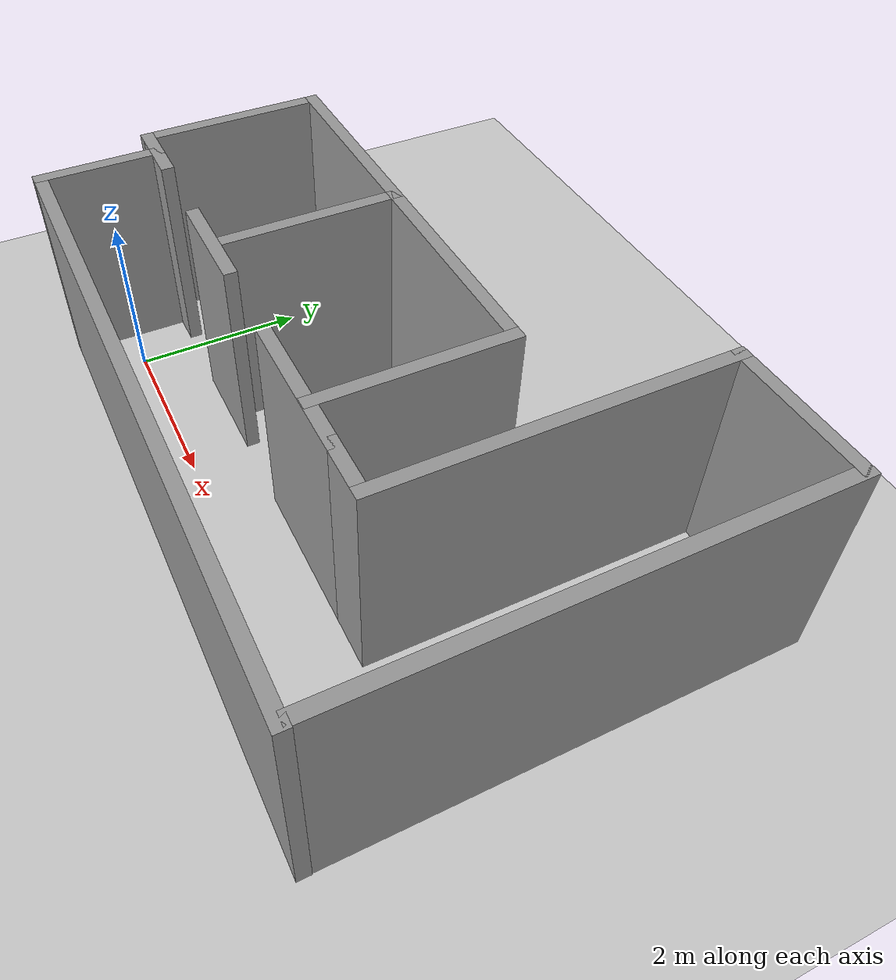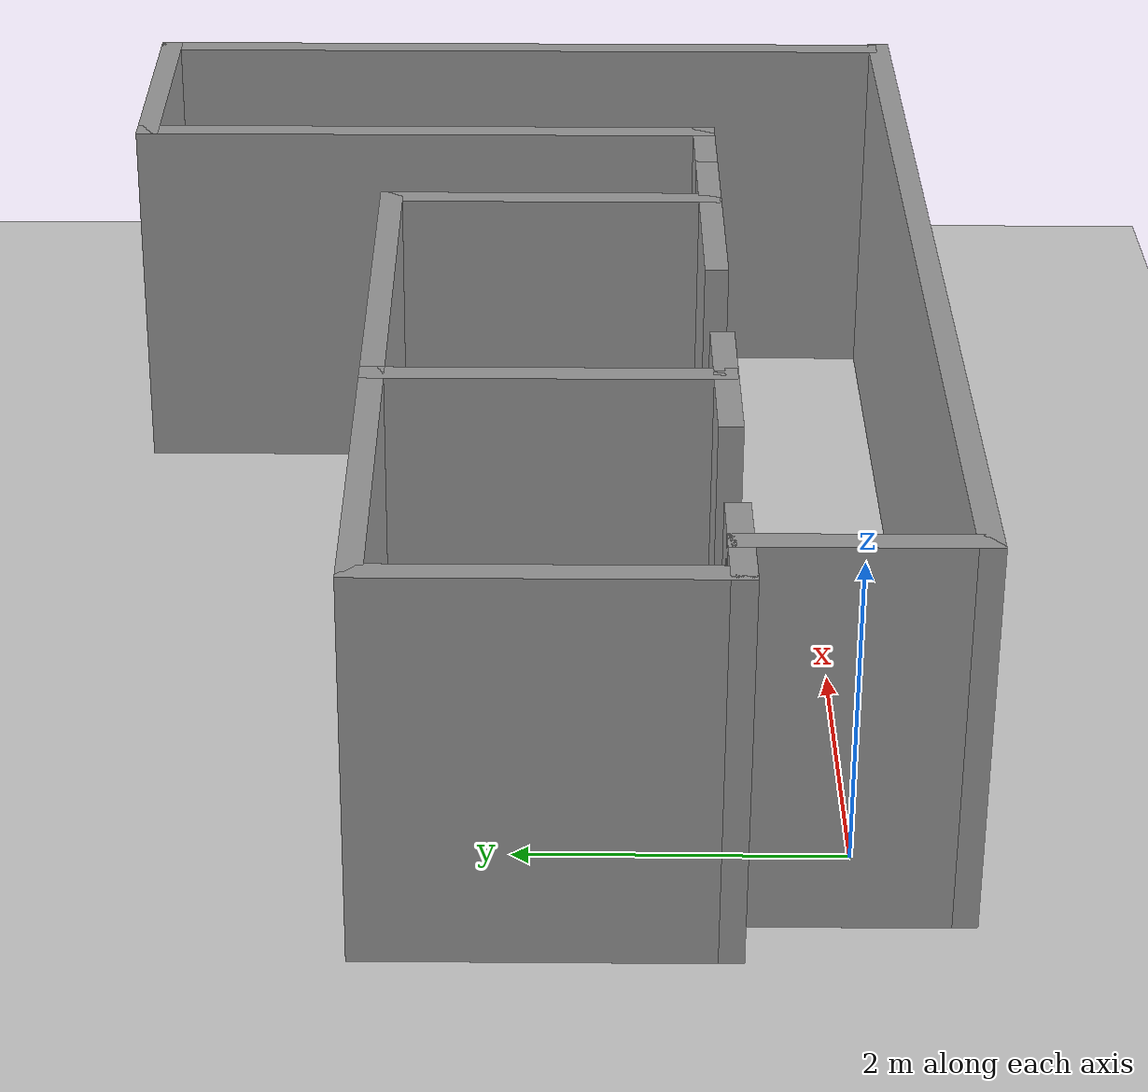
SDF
<sdf version="1.6">
 <world name="default">
  <light name="sun" type="directional">
   <pose>0 0 10 0 -0 0</pose>
   <diffuse>0.8 0.8 0.8 1</diffuse>
   <specular>0.2 0.2 0.2 1</specular>
   <attenuation>
    <range>1000</range>
    <constant>0.9</constant>
    <linear>0.01</linear>
    <quadratic>0.001</quadratic>
   </attenuation>
   <direction>-0.5 0.1 -0.9</direction>
  </light>
  <model name="ground_plane">
   <static>1</static>
   <link name="link">
    <collision name="collision">
     <geometry><plane><normal>0 0 1</normal><size>100 100</size></plane></geometry>
     <surface><friction><ode><mu>100</mu><mu2>50</mu2></ode></friction></surface>
    </collision>
    <visual name="visual">
     <cast_shadows>0</cast_shadows>
     <geometry><plane><normal>0 0 1</normal><size>100 100</size></plane></geometry>
     <material>
      <script><uri>file://media/materials/scripts/gazebo.material</uri><name>Gazebo/Grey</name></script>
     </material>
    </visual>
   </link>
  </model>
  <gravity>0 0 -9.8</gravity>
  <magnetic_field>6e-06 2.3e-05 -4.2e-05</magnetic_field>
  <atmosphere type="adiabatic"/>
  <physics name="default_physics" default="0" type="ode">
   <max_step_size>0.001</max_step_size>
   <real_time_factor>1</real_time_factor>
   <real_time_update_rate>1000</real_time_update_rate>
  </physics>
  <scene><ambient>0.4 0.4 0.4 1</ambient><background>0.7 0.7 0.7 1</background><shadows>1</shadows></scene>
  <audio><device>default</device></audio>
  <spherical_coordinates>
   <surface_model>EARTH_WGS84</surface_model>
   <latitude_deg>0</latitude_deg>
   <longitude_deg>0</longitude_deg>
   <elevation>0</elevation>
   <heading_deg>0</heading_deg>
  </spherical_coordinates>
  <model name="perch_office">
   <pose>2.87522 1.99397 0 0 -0 0</pose>
   <link name="Wall_100">
    <collision name="Wall_100_Collision">
     <geometry><box><size>4 0.15 2.5</size></box></geometry>
     <pose>0 0 1.25 0 -0 0</pose>
    </collision>
    <visual name="Wall_100_Visual">
     <pose>0 0 1.25 0 -0 0</pose>
     <geometry><box><size>4 0.15 2.5</size></box></geometry>
     <material>
      <script><uri>file://media/materials/scripts/gazebo.material</uri><name>Gazebo/Grey</name></script>
      <ambient>1 1 1 1</ambient>
     </material>
     <meta><layer>0</layer></meta>
    </visual>
    <pose>2.24045 0.670994 0 0 -0 1.5708</pose>
   </link>
   <link name="Wall_102">
    <collision name="Wall_102_Collision">
     <geometry><box><size>1.75 0.15 2.5</size></box></geometry>
     <pose>0 0 1.25 0 -0 0</pose>
    </collision>
    <visual name="Wall_102_Visual">
     <pose>0 0 1.25 0 -0 0</pose>
     <geometry><box><size>1.75 0.15 2.5</size></box></geometry>
     <material>
      <script><uri>file://media/materials/scripts/gazebo.material</uri><name>Gazebo/Grey</name></script>
      <ambient>1 1 1 1</ambient>
     </material>
     <meta><layer>0</layer></meta>
    </visual>
    <pose>3.04045 2.59599 0 0 -0 0</pose>
   </link>
   <link name="Wall_103">
    <collision name="Wall_103_Collision">
     <geometry><box><size>5.25 0.15 2.5</size></box></geometry>
     <pose>0 0 1.25 0 -0 0</pose>
    </collision>
    <visual name="Wall_103_Visual">
     <pose>0 0 1.25 0 -0 0</pose>
     <geometry><box><size>5.25 0.15 2.5</size></box></geometry>
     <material>
      <script><uri>file://media/materials/scripts/gazebo.material</uri><name>Gazebo/Grey</name></script>
      <ambient>1 1 1 1</ambient>
     </material>
     <meta><layer>0</layer></meta>
    </visual>
    <pose>3.84045 0.045994 0 0 -0 -1.5708</pose>
   </link>
   <link name="Wall_76">
    <collision name="Wall_76_Collision">
     <geometry><box><size>7.5 0.15 2.5</size></box></geometry>
     <pose>0 0 1.25 0 -0 0</pose>
    </collision>
    <visual name="Wall_76_Visual">
     <pose>0 0 1.25 0 -0 0</pose>
     <geometry><box><size>7.5 0.15 2.5</size></box></geometry>
     <material>
      <script><uri>file://media/materials/scripts/gazebo.material</uri><name>Gazebo/Grey</name></script>
      <ambient>1 1 1 1</ambient>
     </material>
     <meta><layer>0</layer></meta>
    </visual>
    <pose>0.175 -2.59599 0 0 -0 3.14159</pose>
   </link>
   <link name="Wall_80">
    <collision name="Wall_80_Collision">
     <geometry><box><size>1.5 0.15 2.5</size></box></geometry>
     <pose>0 0 1.25 0 -0 0</pose>
    </collision>
    <visual name="Wall_80_Visual">
     <pose>0 0 1.25 0 -0 0</pose>
     <geometry><box><size>1.5 0.15 2.5</size></box></geometry>
     <material>
      <script><uri>file://media/materials/scripts/gazebo.material</uri><name>Gazebo/Grey</name></script>
      <ambient>1 1 1 1</ambient>
     </material>
     <meta><layer>0</layer></meta>
    </visual>
    <pose>-3.5 -1.92099 0 0 -0 1.5708</pose>
   </link>
   <link name="Wall_82">
    <collision name="Wall_82_Collision">
     <geometry><box><size>0.5 0.15 2.5</size></box></geometry>
     <pose>0 0 1.25 0 -0 0</pose>
    </collision>
    <visual name="Wall_82_Visual">
     <pose>0 0 1.25 0 -0 0</pose>
     <geometry><box><size>0.5 0.15 2.5</size></box></geometry>
     <material>
      <script><uri>file://media/materials/scripts/gazebo.material</uri><name>Gazebo/Grey</name></script>
      <ambient>1 1 1 1</ambient>
     </material>
     <meta><layer>0</layer></meta>
    </visual>
    <pose>-3.325 -1.24599 0 0 -0 0</pose>
   </link>
   <link name="Wall_84">
    <collision name="Wall_84_Collision">
     <geometry><box><size>1.25 0.15 2.5</size></box></geometry>
     <pose>0 0 1.25 0 -0 0</pose>
    </collision>
    <visual name="Wall_84_Visual">
     <pose>0 0 1.25 0 -0 0</pose>
     <geometry><box><size>1.25 0.15 2.5</size></box></geometry>
     <material>
      <script><uri>file://media/materials/scripts/gazebo.material</uri><name>Gazebo/Grey</name></script>
      <ambient>1 1 1 1</ambient>
     </material>
     <meta><layer>0</layer></meta>
    </visual>
    <pose>-1.55441 -1.25049 0 0 -0 0</pose>
   </link>
   <link name="Wall_88">
    <collision name="Wall_88_Collision">
     <geometry><box><size>1.75 0.15 2.5</size></box></geometry>
     <pose>0 0 1.25 0 -0 0</pose>
    </collision>
    <visual name="Wall_88_Visual">
     <pose>0 0 1.25 0 -0 0</pose>
     <geometry><box><size>1.75 0.15 2.5</size></box></geometry>
     <material>
      <script><uri>file://media/materials/scripts/gazebo.material</uri><name>Gazebo/Grey</name></script>
      <ambient>1 1 1 1</ambient>
     </material>
     <meta><layer>0</layer></meta>
    </visual>
    <pose>0.840447 -1.25401 0 0 -0 0</pose>
   </link>
   <link name="Wall_90">
    <collision name="Wall_90_Collision">
     <geometry><box><size>0.5 0.15 2.5</size></box></geometry>
     <pose>0 0 1.25 0 -0 0</pose>
    </collision>
    <visual name="Wall_90_Visual">
     <pose>0 0 1.25 0 -0 0</pose>
     <geometry><box><size>0.5 0.15 2.5</size></box></geometry>
     <material>
      <script><uri>file://media/materials/scripts/gazebo.material</uri><name>Gazebo/Grey</name></script>
      <ambient>1 1 1 1</ambient>
     </material>
     <meta><layer>0</layer></meta>
    </visual>
    <pose>-3.675 -1.24599 0 0 -0 3.14159</pose>
   </link>
   <link name="Wall_91">
    <collision name="Wall_91_Collision">
     <geometry><box><size>2.25 0.15 2.5</size></box></geometry>
     <pose>0 0 1.25 0 -0 0</pose>
    </collision>
    <visual name="Wall_91_Visual">
     <pose>0 0 1.25 0 -0 0</pose>
     <geometry><box><size>2.25 0.15 2.5</size></box></geometry>
     <material>
      <script><uri>file://media/materials/scripts/gazebo.material</uri><name>Gazebo/Grey</name></script>
      <ambient>1 1 1 1</ambient>
     </material>
     <meta><layer>0</layer></meta>
    </visual>
    <pose>-3.85 -0.195994 0 0 -0 1.5708</pose>
   </link>
   <link name="Wall_92">
    <collision name="Wall_92_Collision">
     <geometry><box><size>2.5 0.15 2.5</size></box></geometry>
     <pose>0 0 1.25 0 -0 0</pose>
    </collision>
    <visual name="Wall_92_Visual">
     <pose>0 0 1.25 0 -0 0</pose>
     <geometry><box><size>2.5 0.15 2.5</size></box></geometry>
     <material>
      <script><uri>file://media/materials/scripts/gazebo.material</uri><name>Gazebo/Grey</name></script>
      <ambient>1 1 1 1</ambient>
     </material>
     <meta><layer>0</layer></meta>
    </visual>
    <pose>-2.675 0.854006 0 0 -0 0</pose>
   </link>
   <link name="Wall_93">
    <collision name="Wall_93_Collision">
     <geometry><box><size>2.25 0.15 2.5</size></box></geometry>
     <pose>0 0 1.25 0 -0 0</pose>
    </collision>
    <visual name="Wall_93_Visual">
     <pose>0 0 1.25 0 -0 0</pose>
     <geometry><box><size>2.25 0.15 2.5</size></box></geometry>
     <material>
      <script><uri>file://media/materials/scripts/gazebo.material</uri><name>Gazebo/Grey</name></script>
      <ambient>1 1 1 1</ambient>
     </material>
     <meta><layer>0</layer></meta>
    </visual>
    <pose>-1.5 -0.195994 0 0 -0 -1.5708</pose>
   </link>
   <link name="Wall_95">
    <collision name="Wall_95_Collision">
     <geometry><box><size>2.75 0.15 2.5</size></box></geometry>
     <pose>0 0 1.25 0 -0 0</pose>
    </collision>
    <visual name="Wall_95_Visual">
     <pose>0 0 1.25 0 -0 0</pose>
     <geometry><box><size>2.75 0.15 2.5</size></box></geometry>
     <material>
      <script><uri>file://media/materials/scripts/gazebo.material</uri><name>Gazebo/Grey</name></script>
      <ambient>1 1 1 1</ambient>
     </material>
     <meta><layer>0</layer></meta>
    </visual>
    <pose>-0.2 0.854006 0 0 -0 0</pose>
   </link>
   <link name="Wall_96">
    <collision name="Wall_96_Collision">
     <geometry><box><size>2.25 0.15 2.5</size></box></geometry>
     <pose>0 0 1.25 0 -0 0</pose>
    </collision>
    <visual name="Wall_96_Visual">
     <pose>0 0 1.25 0 -0 0</pose>
     <geometry><box><size>2.25 0.15 2.5</size></box></geometry>
     <material>
      <script><uri>file://media/materials/scripts/gazebo.material</uri><name>Gazebo/Grey</name></script>
      <ambient>1 1 1 1</ambient>
     </material>
     <meta><layer>0</layer></meta>
    </visual>
    <pose>1.1 -0.195994 0 0 -0 -1.5708</pose>
   </link>
   <link name="Wall_98">
    <collision name="Wall_98_Collision">
     <geometry><box><size>0.75 0.15 2.5</size></box></geometry>
     <pose>0 0 1.25 0 -0 0</pose>
    </collision>
    <visual name="Wall_98_Visual">
     <pose>0 0 1.25 0 -0 0</pose>
     <geometry><box><size>0.75 0.15 2.5</size></box></geometry>
     <material>
      <script><uri>file://media/materials/scripts/gazebo.material</uri><name>Gazebo/Grey</name></script>
      <ambient>1 1 1 1</ambient>
     </material>
     <meta><layer>0</layer></meta>
    </visual>
    <pose>1.94045 -1.25401 0 0 -0 0</pose>
   </link>
   <static>1</static>
  </model>
 </world>
</sdf>
